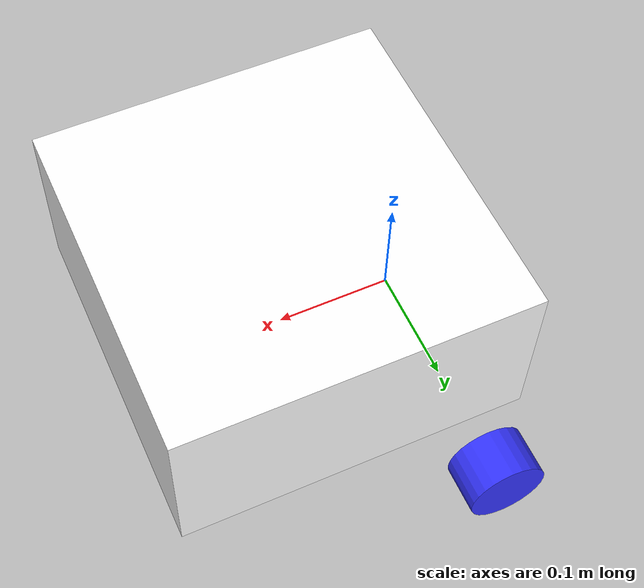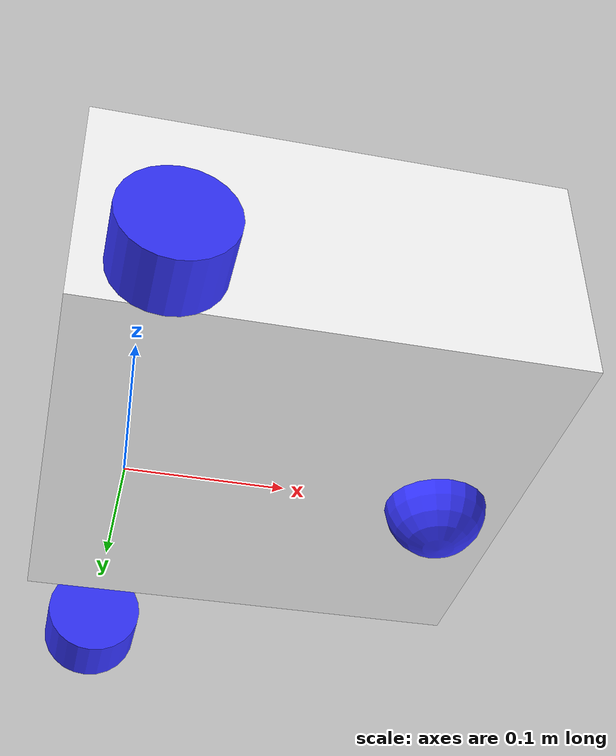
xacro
<?xml version="1.0"?>
<!-- Etiqueta raíz que indica que este es un archivo de robot y que usará variables Xacro -->

<robot xmlns:xacro="http://www.ros.org/wiki/xacro">

    <!-- #####################   LIBRERÍAS    ##################### -->

    <xacro:include filename="inertial_macros.xacro" />

    <!--                MATERIALES Y COLORES                        -->
    <!-- Define colores reutilizables para previsualizar en RViz.   -->
    <!-- Nota: Gazebo ignora estos colores, necesita sus etiquetas  -->
    <material name="white">
        <color rgba="1 1 1 1"/>
    </material>
    <material name="blue">
        <color rgba="0.2 0.2 1 1"/>
    </material>

    <!--                BASE LINK (El ancla del robot)              -->
    <!-- Es el origen matemático (0,0,0) sin geometría ni masa.     -->
    <!-- Su única función es ser el punto de referencia global.     -->
    <!-- Se anclan a él el chasis y los elementos motrices.         -->
    <!-- Lo hemos situado en el centro del eje trasero motriz.      -->

    <link name="base_link">
    </link>

    <!-- #######################   CHASIS   ####################### -->

    <!-- JOINT: Unión mecánica, fixed es como una soldadura-->
    <joint name="chassis_joint" type="fixed">
        <parent link="base_link"/>                                                                      <!-- parent es a quien nos unimos-->
        <child link="chassis"/>                                                                         <!-- child es quien se une al parent-->
        <origin xyz="-0.05 0 0"/>
    </joint>

    <!-- LINK: Las propiedades físicas de la pieza -->
    <link name="chassis">

        <!-- VISUAL: Lo que renderiza la pantalla. Aquí se cambiará -->
        <visual>
            <!-- Desplazamos el origen visual para que crezca hacia -->
            <!-- adelante (+X) y hacia arriba (+Z) librando el suelo-->
            <origin xyz="0.15 0 0.075"/>
            <geometry>
                <box size="0.3 0.3 0.15"/>
            </geometry>
            <material name="white"/>
        </visual>

        <!-- COLLISION: El volumen invisible que choca en Gazebo.   -->
        <!-- Regla de oro: NUNCA usar un STL complejo aquí.         -->
        <!-- Mantener formas primitivas para no sobrecargar la CPU. -->
        <!-- Podemos sustituir el box por un mesh si tenemos un     -->
        <!-- archivo STL con pocos polígonos (menos de 30 caras).  -->
        <collision>
            <origin xyz="0.15 0 0.075"/>
            <geometry>
                <box size="0.3 0.3 0.15"/>
            </geometry>
        </collision>

        <!-- INERTIAL: Masa y distribución de peso para el motor    -->
        <!-- de físicas. Sin esto el robot volará o temblará.       -->
        <!-- Cuando se tenga el archivo stl del chasis se miran en  -->
        <!-- propiedades. Pasar los valores a m, kg*m², kg          -->

        <!--        FORMA NOMAL DE USAR LA MACRO DE INERCIA         -->

                  <!-- Inercia matemática de un prisma rectangular -->

        <!--        FORMA DE USAR LA MACRO DE INERCIA               -->

        <xacro:inertial_box mass="5.0" x="0.3" y="0.3" z="0.15">
            <origin xyz="0.15 0 0.075" rpy="0 0 0"/>
        </xacro:inertial_box>

    </link>

    <!--                MACROS (Plantillas paramétricas)            -->
    <!-- Define la rueda una sola vez. Recibe parámetros dinámicos: -->
    <!-- 'prefix' (nombre left/right) y 'offset_y' (separación).    -->
    <!-- Son como las funciones en programación.                    -->

    <!-- #######################   RUEDAS   ####################### -->

    <xacro:macro name="rueda_motriz" params="prefix offset_y rotacion_z">

        <!-- type="continuous" indica que gira sin tope sobre un eje-->
        <joint name="${prefix}_wheel_joint" type="continuous">
            <parent link="base_link"/>
            <child link="${prefix}_wheel"/>
            <!-- Desplaza en Y y tumba el cilindro 90 grados (-pi/2)-->
            <origin xyz="0 ${offset_y} 0" rpy="-${pi/2} 0 0"/>
            <!-- Indica que la rueda gira sobre su eje Z local      -->
            <axis xyz="0 0 1"/>
        </joint>

        <link name="${prefix}_wheel">
            <visual>
                <origin xyz="0 0 0" rpy="0 0 ${rotacion_z}"/>                               <!-- No necesario ahora pero por si al importar el stl no encaja-->
                <geometry>
                    <cylinder radius="0.0325" length="0.04"/>
                </geometry>
                <material name="blue"/>
            </visual>
            <collision>
                <geometry>
                    <cylinder radius="0.0325" length="0.04"/>
                </geometry>
            </collision>

            <xacro:inertial_cylinder mass="1.0" length="0.04" radius="0.0325">
                <origin xyz="0 0 0" rpy="0 0 0"/>
            </xacro:inertial_cylinder>

        </link>
    </xacro:macro>

    <!--                INSTANCIACIÓN DE MACROS                     -->
    <!-- Crea las piezas físicas inyectando los parámetros.         -->

    <xacro:rueda_motriz prefix="left" offset_y="0.2" rotacion_z="0"/>
    <xacro:rueda_motriz prefix="right" offset_y="-0.2" rotacion_z="${pi}"/>

    <!-- #####################   RUEDA LOCA   ##################### -->
    <!-- Se pone unión fixed y después en gazebo se pondrá          -->
    <!-- rozamineto nulo para que actue como rueda loca             -->

    <joint name="caster_wheel_joint" type="fixed">
        <parent link="chassis"/>                                                             <!-- parent es a quien nos unimos-->
        <child link="caster_wheel"/>                                                         <!-- child es quien se une al parent-->
        <origin xyz="0.25 0 0.0"/>

    </joint>

    <!-- LINK: Las propiedades físicas de la pieza -->
    <link name="caster_wheel">

        <visual>
            <origin xyz="0 0 0.0"/>
            <geometry>
                <sphere radius="0.0325"/>
            </geometry>
            <material name="blue"/>
        </visual>

        <collision>
            <origin xyz="0 0 0"/>
            <geometry>
                <sphere radius="0.0325"/>
            </geometry>
        </collision>

        <xacro:inertial_sphere mass="0.1" radius="0.0325">
            <origin xyz="0 0 0" rpy="0 0 0"/>
        </xacro:inertial_sphere>

    </link>

    <!-- CONTROLADOR DE TRACCIÓN DIFERENCIAL (GAZEBO)               -->

    <gazebo>
        <plugin filename="ignition-gazebo-diff-drive-system" name="ignition::gazebo::systems::DiffDrive">
            <left_joint>left_wheel_joint</left_joint>
            <right_joint>right_wheel_joint</right_joint>
            <!-- Separación total entre ruedas (0.2 + 0.2) -->
            <wheel_separation>0.4</wheel_separation>
            <!-- Radio de la rueda en metros -->
            <wheel_radius>0.0325</wheel_radius>
            <odom_publish_frequency>50</odom_publish_frequency>
            <topic>cmd_vel</topic>
        </plugin>
    </gazebo>

    <gazebo>
        <plugin filename="ignition-gazebo-diff-drive-system" name="ignition::gazebo::systems::DiffDrive">
            <left_joint>left_wheel_joint</left_joint>
            <right_joint>right_wheel_joint</right_joint>
            <wheel_separation>0.4</wheel_separation>
            <wheel_radius>0.0325</wheel_radius>

            <!-- Publica la odeometría a 50 Hz -->
            <odom_publish_frequency>50</odom_publish_frequency>
            <!-- Topics -->
            <topic>cmd_vel</topic>
            <odom_topic>odom</odom_topic>
            <tf_topic>tf</tf_topic>
            <!-- Frames: nombre de los datos que van por el topic tf-->
            <frame_id>odom</frame_id>                                                       <!-- frame_id es el nombre del frame padre, el que se no mueve -->
            <child_frame_id>base_link</child_frame_id>                                      <!-- child_frame_id es el nombre del frame hijo, el que se mueve respecto al padre -->
        </plugin>
    </gazebo>

</robot>

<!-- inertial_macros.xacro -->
<robot xmlns:xacro="http://www.ros.org/wiki/xacro">

    <!-- Inercia de una caja (Prisma rectangular) -->
    <xacro:macro name="inertial_box" params="mass x y z *origin">
        <inertial>
            <xacro:insert_block name="origin"/>
            <mass value="${mass}" />
            <inertia ixx="${(1/12) * mass * (y*y+z*z)}" ixy="0.0" ixz="0.0"
                     iyy="${(1/12) * mass * (x*x+z*z)}" iyz="0.0"
                     izz="${(1/12) * mass * (x*x+y*y)}" />
        </inertial>
    </xacro:macro>

    <!-- Inercia de un cilindro -->
    <xacro:macro name="inertial_cylinder" params="mass length radius *origin">
        <inertial>
            <xacro:insert_block name="origin"/>
            <mass value="${mass}" />
            <inertia ixx="${(1/12) * mass * (3*radius*radius + length*length)}" ixy="0.0" ixz="0.0"
                     iyy="${(1/12) * mass * (3*radius*radius + length*length)}" iyz="0.0"
                     izz="${(1/2) * mass * (radius*radius)}" />
        </inertial>
    </xacro:macro>

    <!-- Inercia de una esfera -->
    <xacro:macro name="inertial_sphere" params="mass radius *origin">
        <inertial>
            <xacro:insert_block name="origin"/>
            <mass value="${mass}" />
            <inertia ixx="${(2/5) * mass * (radius*radius)}" ixy="0.0" ixz="0.0"
                     iyy="${(2/5) * mass * (radius*radius)}" iyz="0.0"
                     izz="${(2/5) * mass * (radius*radius)}" />
        </inertial>
    </xacro:macro>

</robot>
